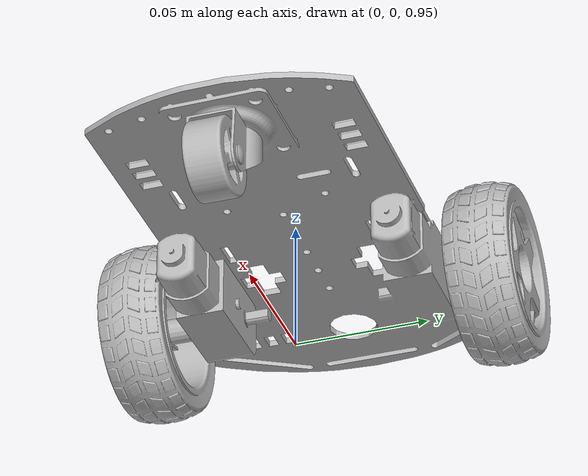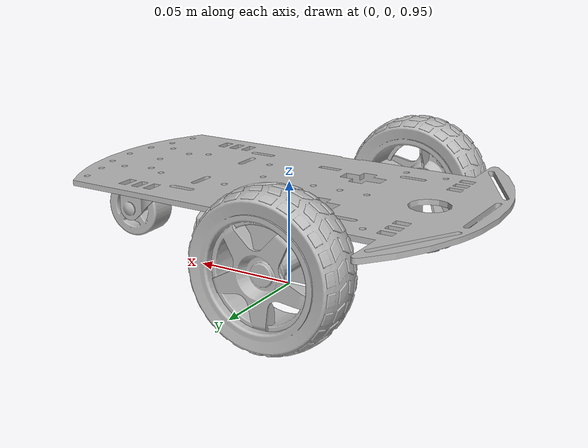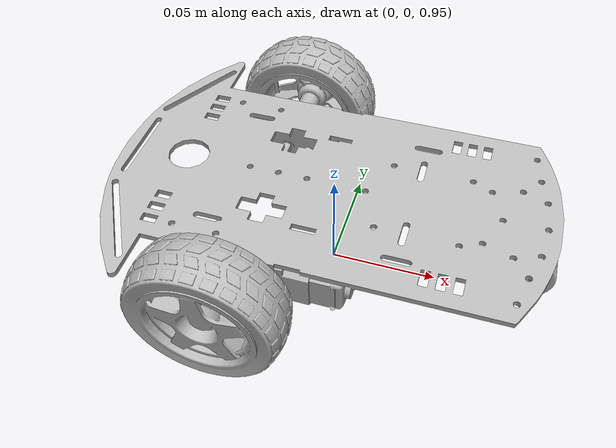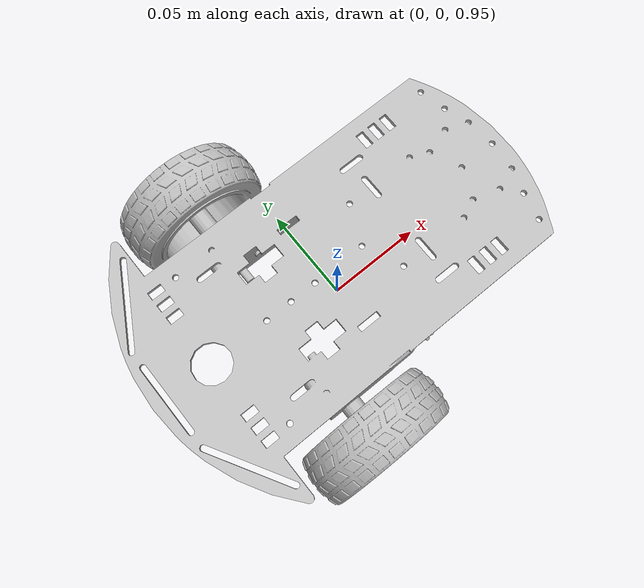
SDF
<sdf version='1.7'>
  <model name='line_follower_robot'>
    <joint name='world_joint' type='fixed'>
      <pose relative_to='__model__'>0 0 1 0 -0 0</pose>
      <parent>world</parent>
      <child>base_link</child>
    </joint>
    <link name='base_link'>
      <pose relative_to='world_joint'>0 0 0 0 -0 0</pose>
      <inertial>
        <pose>0.010085 -8e-06 -0.006605 0 -0 0</pose>
        <mass>0.12859</mass>
        <inertia>
          <ixx>5.2146e-05</ixx>
          <ixy>0</ixy>
          <ixz>0</ixz>
          <iyy>0.00017957</iyy>
          <iyz>0</iyz>
          <izz>0.00022799</izz>
        </inertia>
      </inertial>
      <collision name='base_link_collision'>
        <pose>0 0 0 0 -0 0</pose>
        <geometry>
          <mesh>
            <scale>1 1 1</scale>
            <uri>model://line_follower_robot/meshes/base_link.STL</uri>
          </mesh>
        </geometry>
      </collision>
      <visual name='base_link_visual'>
        <pose>0 0 0 0 -0 0</pose>
        <geometry>
          <mesh>
            <scale>1 1 1</scale>
            <uri>model://line_follower_robot/meshes/base_link.STL</uri>
          </mesh>
        </geometry>
      </visual>
    </link>
    <joint name='castor_joint' type='revolute'>
      <pose relative_to='base_link'>0.072581 0 -0.0025 0 -0 0</pose>
      <parent>base_link</parent>
      <child>castor_base_link</child>
      <axis>
        <xyz>0 0 1</xyz>
        <limit>
          <lower>-1e+16</lower>
          <upper>1e+16</upper>
        </limit>
        <dynamics>
          <spring_reference>0</spring_reference>
          <spring_stiffness>0</spring_stiffness>
        </dynamics>
      </axis>
    </joint>
    <link name='castor_base_link'>
      <pose relative_to='castor_joint'>0 0 0 0 -0 0</pose>
      <inertial>
        <pose>0 0 0 0 -0 0</pose>
        <mass>0.01</mass>
        <inertia>
          <ixx>1e-05</ixx>
          <ixy>0</ixy>
          <ixz>0</ixz>
          <iyy>1e-05</iyy>
          <iyz>0</iyz>
          <izz>1e-05</izz>
        </inertia>
      </inertial>
      <collision name='castor_base_link_collision'>
        <pose>0 0 0 0 -0 0</pose>
        <geometry>
          <mesh>
            <scale>1 1 1</scale>
            <uri>model://line_follower_robot/meshes/castor_wheel.STL</uri>
          </mesh>
        </geometry>
      </collision>
      <visual name='castor_base_link_visual'>
        <pose>0 0 0 0 -0 0</pose>
        <geometry>
          <mesh>
            <scale>1 1 1</scale>
            <uri>model://line_follower_robot/meshes/castor_base_link.STL</uri>
          </mesh>
        </geometry>
      </visual>
    </link>
    <joint name='castor_wheel_joint' type='revolute'>
      <pose relative_to='castor_base_link'>0.015014 0.000142 -0.02296 -1.5708 0 0</pose>
      <parent>castor_base_link</parent>
      <child>castor_wheel</child>
      <axis>
        <xyz>0 0 1</xyz>
        <limit>
          <lower>-1e+16</lower>
          <upper>1e+16</upper>
        </limit>
        <dynamics>
          <spring_reference>0</spring_reference>
          <spring_stiffness>0</spring_stiffness>
        </dynamics>
      </axis>
    </joint>
    <link name='castor_wheel'>
      <pose relative_to='castor_wheel_joint'>0 0 0 0 -0 0</pose>
      <inertial>
        <pose>0 0 0 0 -0 0</pose>
        <mass>0.01</mass>
        <inertia>
          <ixx>1e-05</ixx>
          <ixy>0</ixy>
          <ixz>0</ixz>
          <iyy>1e-05</iyy>
          <iyz>0</iyz>
          <izz>1e-05</izz>
        </inertia>
      </inertial>
      <collision name='castor_wheel_collision'>
        <pose>0 0 0 0 -0 0</pose>
        <geometry>
          <mesh>
            <scale>1 1 1</scale>
            <uri>model://line_follower_robot/meshes/castor_wheel.STL</uri>
          </mesh>
        </geometry>
      </collision>
      <visual name='castor_wheel_visual'>
        <pose>0 0 0 0 -0 0</pose>
        <geometry>
          <mesh>
            <scale>1 1 1</scale>
            <uri>model://line_follower_robot/meshes/castor_wheel.STL</uri>
          </mesh>
        </geometry>
      </visual>
    </link>
    <joint name='left_wheel_joint' type='revolute'>
      <pose relative_to='base_link'>-0.033259 0.07575 -0.01375 -1.5708 0 0</pose>
      <parent>base_link</parent>
      <child>left_wheel</child>
      <axis>
        <xyz>0 0 1</xyz>
        <limit>
          <lower>-1e+16</lower>
          <upper>1e+16</upper>
        </limit>
        <dynamics>
          <spring_reference>0</spring_reference>
          <spring_stiffness>0</spring_stiffness>
        </dynamics>
      </axis>
    </joint>
    <link name='left_wheel'>
      <pose relative_to='left_wheel_joint'>0 0 0 0 -0 0</pose>
      <inertial>
        <pose>0 0 -0.007373 0 -0 0</pose>
        <mass>0.021404</mass>
        <inertia>
          <ixx>8.6283e-06</ixx>
          <ixy>0</ixy>
          <ixz>0</ixz>
          <iyy>8.6269e-06</iyy>
          <iyz>0</iyz>
          <izz>1.4515e-05</izz>
        </inertia>
      </inertial>
      <collision name='left_wheel_collision'>
        <pose>0 0 0 0 -0 0</pose>
        <geometry>
          <mesh>
            <scale>1 1 1</scale>
            <uri>model://line_follower_robot/meshes/left_wheel.STL</uri>
          </mesh>
        </geometry>
      </collision>
      <visual name='left_wheel_visual'>
        <pose>0 0 0 0 -0 0</pose>
        <geometry>
          <mesh>
            <scale>1 1 1</scale>
            <uri>model://line_follower_robot/meshes/left_wheel.STL</uri>
          </mesh>
        </geometry>
      </visual>
    </link>
    <joint name='right_wheel_joint' type='revolute'>
      <pose relative_to='base_link'>-0.033259 -0.07575 -0.01375 -1.5708 0 0</pose>
      <parent>base_link</parent>
      <child>right_wheel</child>
      <axis>
        <xyz>0 0 1</xyz>
        <limit>
          <lower>-1e+16</lower>
          <upper>1e+16</upper>
        </limit>
        <dynamics>
          <spring_reference>0</spring_reference>
          <spring_stiffness>0</spring_stiffness>
        </dynamics>
      </axis>
    </joint>
    <link name='right_wheel'>
      <pose relative_to='right_wheel_joint'>0 0 0 0 -0 0</pose>
      <inertial>
        <pose>0 0 0.007373 0 -0 0</pose>
        <mass>0.021404</mass>
        <inertia>
          <ixx>8.6283e-06</ixx>
          <ixy>0</ixy>
          <ixz>0</ixz>
          <iyy>8.6269e-06</iyy>
          <iyz>0</iyz>
          <izz>1.4515e-05</izz>
        </inertia>
      </inertial>
      <collision name='right_wheel_collision'>
        <pose>0 0 0 0 -0 0</pose>
        <geometry>
          <mesh>
            <scale>1 1 1</scale>
            <uri>model://line_follower_robot/meshes/right_wheel.STL</uri>
          </mesh>
        </geometry>
      </collision>
      <visual name='right_wheel_visual'>
        <pose>0 0 0 0 -0 0</pose>
        <geometry>
          <mesh>
            <scale>1 1 1</scale>
            <uri>model://line_follower_robot/meshes/right_wheel.STL</uri>
          </mesh>
        </geometry>
      </visual>
    </link>
  </model>
</sdf>
